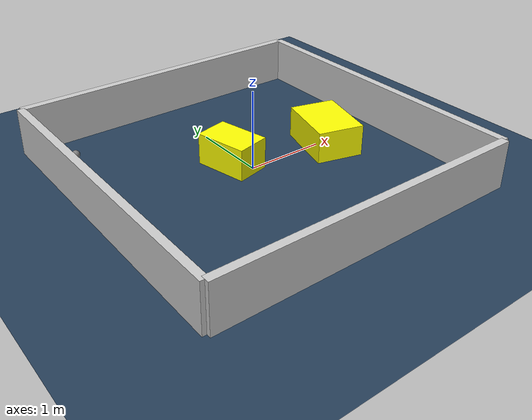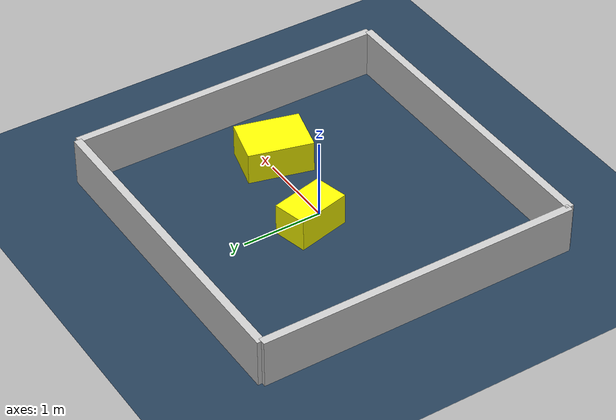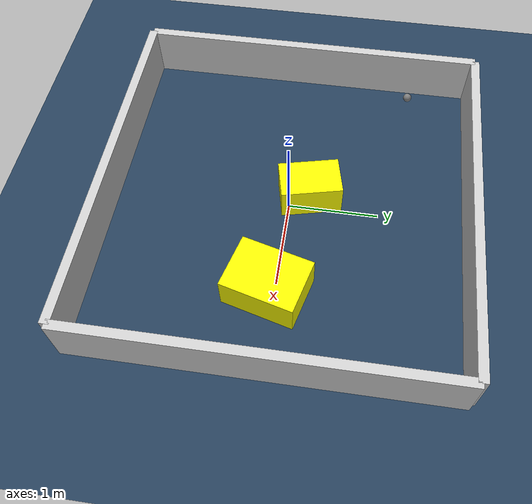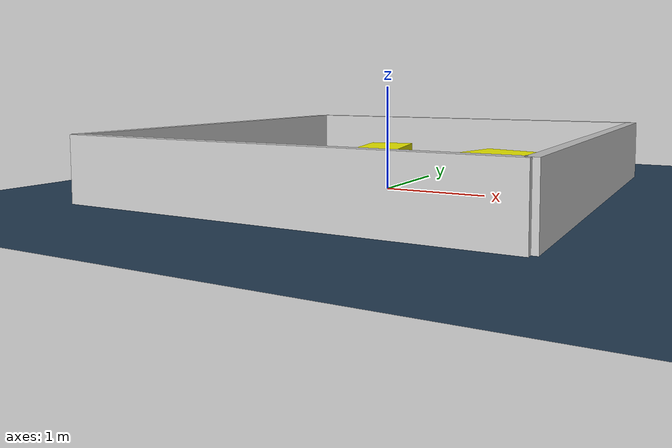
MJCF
<?xml version="1.0" ?>
<mujoco model="generated_environment">
  <option timestep="0.01" integrator="RK4" cone="elliptic"/>
  <default>
    <geom density="1"/>
  </default>
  <asset>
    <texture builtin="gradient" height="3072" rgb1="0.3 0.5 0.7" rgb2="0 0 0" type="skybox" width="512"/>
    <texture builtin="checker" height="300" mark="edge" markrgb="0.8 0.8 0.8" name="groundplane" rgb1="0.2 0.3 0.4" rgb2="0.1 0.2 0.3" type="2d" width="300"/>
    <material name="groundplane" reflectance="0.2" texrepeat="5 5" texture="groundplane" texuniform="true"/>
    <material name="robot" rgba="0.0 1.0 0.0 1"/>
  </asset>
  <worldbody>
    <light dir="0 0 -1" directional="true" pos="0 0 1.5"/>
    <geom condim="4" friction="1.0 0.005 0.001" material="groundplane" name="floor" size="0 0 0.05" type="plane"/>
    <body name="walls">
      <geom name="wall_1" condim="4" pos="-2.0 0.0 0.3" rgba="0.800000011920929 0.800000011920929 0.800000011920929 1.0" size="0.05 2.0 0.3" type="box"/>
      <geom name="wall_2" condim="4" pos="2.0 0.0 0.3" rgba="0.800000011920929 0.800000011920929 0.800000011920929 1.0" size="0.05 2.0 0.3" type="box"/>
      <geom name="wall_3" condim="4" pos="0.0 -2.0 0.3" rgba="0.800000011920929 0.800000011920929 0.800000011920929 1.0" size="2.0 0.05 0.3" type="box"/>
      <geom name="wall_4" condim="4" pos="0.0 2.0 0.3" rgba="0.800000011920929 0.800000011920929 0.800000011920929 1.0" size="2.0 0.05 0.3" type="box"/>
    </body>
    <body name="robot">
      <joint name="joint_x" type="slide" pos="0 0 0" axis="1 0 0"/>
      <joint name="joint_y" type="slide" pos="0 0 0" axis="0 1 0"/>
      <geom name="robot" type="sphere" pos="-1.6791276655529257 1.2500447906192318 0.2" size="0.05" mass="5." friction="1.0 0.005 0.0001" condim="4"/>
      <site name="sensor_ball"/>
    </body>
    <body name="obstacle_1_movable">
      <geom name="obstacle_1_movable" condim="4" pos="1.0919533688412035 -0.07006470537632681 0.2" euler="0 0 165.3746790775965" friction="1.0 0.005 0.001" rgba="1 1 0 1" size="0.297000034178264 0.40084990067123816 0.2" type="box" mass="0.1"/>
      <joint type="free"/>
    </body>
    <body name="obstacle_2_movable">
      <geom name="obstacle_2_movable" condim="4" pos="-0.1501103631147045 0.21597333856698242 0.2" euler="0 0 283.2228370647163" friction="1.0 0.005 0.001" rgba="1 1 0 1" size="0.3369660705128795 0.2163110763686507 0.2" type="box" mass="0.1"/>
      <joint type="free"/>
    </body>
  </worldbody>
  <actuator>
    <motor name="actuator_x" joint="joint_x" gear="1" ctrlrange="-1 1"/>
    <motor name="actuator_y" joint="joint_y" gear="1" ctrlrange="-1 1"/>
  </actuator>
</mujoco>
